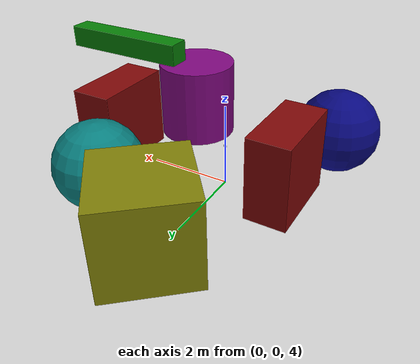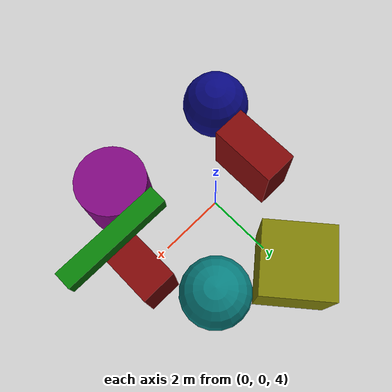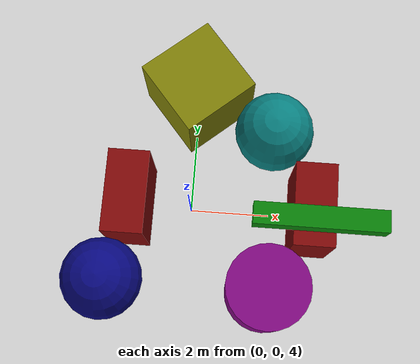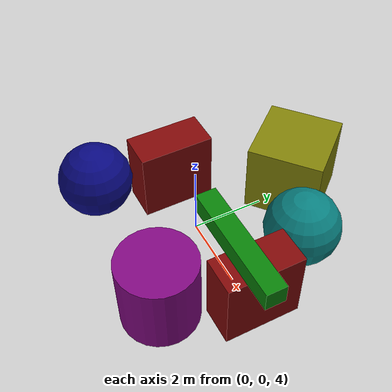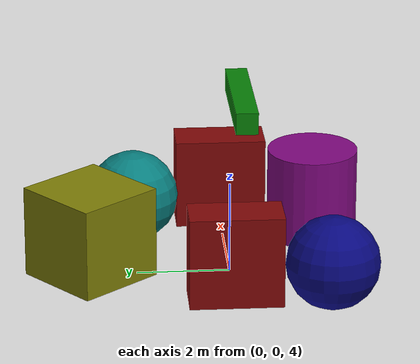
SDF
<sdf version="1.3">
    <world name="world_1">
        <scene>
            <ambient>0.5 0.5 0.5 1.0</ambient>
            <background>0.5 0.5 0.5 1.0</background>
        </scene>
        <physics type="ode">
            <gravity>0.0 0.0 0.0</gravity>
            <ode>
                <solver>
                    <type>quick</type>
                    <dt>0.001</dt>
                    <iters>20</iters>
                    <sor>1.3</sor>
                </solver>
                <constraints>
                    <cfm>0</cfm>
                    <erp>0.2</erp>
                    <contact_max_correcting_vel>100.0</contact_max_correcting_vel>
                    <contact_surface_layer>0.0</contact_surface_layer>
                </constraints>
            </ode>
            <max_contacts>250</max_contacts>
        </physics>
        <model name="model_1">
            <pose>0.0 0.0 5.0 0.0 0.0 0.0</pose>
            <link name="link_1">
                <pose>0.0 0.0 0.0 0.0 0.0 0.707</pose>
                <inertial>
                    <pose>0.0 0.0 0.0 0.0 0.0 0.0</pose>
                    <inertia>
                        <ixx>1.0</ixx>
                        <ixy>0.0</ixy>
                        <ixz>0.0</ixz>
                        <iyy>1.0</iyy>
                        <iyz>0.0</iyz>
                        <izz>1.0</izz>
                    </inertia>
                    <mass>10.0</mass>
                </inertial>
                <visual name="visual_box">
                    <pose>0.0 0.0 0.0 0.0 0.0 0.0</pose>
                    <geometry>
                        <box>
                            <size>0.05 0.05 0.05</size>
                        </box>
                    </geometry>
                    <cast_shadows>true</cast_shadows>
                    <laser_retro>100.0</laser_retro>
                </visual>
                <collision name="collision_box">
                    <pose>0.0 0.0 0.0 0.0 0.0 0.0</pose>
                    <max_contacts>250</max_contacts>
                    <geometry>
                        <box>
                            <size>0.05 0.05 0.05</size>
                        </box>
                    </geometry>
                    <surface>
                        <friction>
                            <ode>
                                <mu>0.5</mu>
                                <mu2>0.2</mu2>
                                <fdir1>1.0 0 0</fdir1>
                                <slip1>0</slip1>
                                <slip2>0</slip2>
                            </ode>
                        </friction>
                        <bounce>
                            <restitution_coefficient>0</restitution_coefficient>
                            <threshold>1000000.0</threshold>
                        </bounce>
                        <contact>
                            <ode>
                                <soft_cfm>0</soft_cfm>
                                <soft_erp>0.2</soft_erp>
                                <kp>1e15</kp>
                                <kd>1e13</kd>
                                <max_vel>100.0</max_vel>
                                <min_depth>0.0001</min_depth>
                            </ode>
                        </contact>
                    </surface>
                    <laser_retro>100.0</laser_retro>
                </collision>
                <sensor name="laser_sensor" type="gpu_ray">
                    <pose>0.0 0.0 0.0 0.0 0.0 0.0</pose>
                    <ray>
                        <scan display="true">
                            <horizontal>
                                <samples>640</samples>
                                <resolution>1</resolution>
                                <min_angle>-1.396263</min_angle>
                                <max_angle>1.396263</max_angle>
                            </horizontal>
                            <vertical>
                                <samples>1</samples>
                                <resolution>0.5</resolution>
                                <min_angle>-0.7854</min_angle>
                                <max_angle>0.7854</max_angle>
                            </vertical>
                        </scan>
                        <range>
                            <min>0.080000000000000002</min>
                            <max>10.0</max>
                            <resolution>0.01</resolution>
                        </range>
                    </ray>
                    <plugin name="gpu_laser" filename="libgazebo_ros_gpu_laser.so">
                        <alwaysOn>1</alwaysOn>
                        <updateRate>20.0</updateRate>
                        <gaussianNoise>0.0</gaussianNoise>
                        <imageTopicName>image</imageTopicName>
                        <topicName>laser_scan</topicName>
                        <frameName>/laser_sensor</frameName>
                        <pointCloudCutoff>0.001</pointCloudCutoff>
                    </plugin>
                    <always_on>true</always_on>
                    <update_rate>20.0</update_rate>
                </sensor>
                <gravity>false</gravity>
                <self_collide>true</self_collide>
                <kinematic>false</kinematic>
            </link>
            <static>true</static>
        </model>
        <model name="model_2">
            <pose>0.0 0.0 0.0 0.0 0.0 0.0</pose>
            <link name="link_1">
                <pose>3.0 0.0 5.0 0.0 0.0 0.0</pose>
                <inertial>
                    <pose>0.0 0.0 0.0 0.0 0.0 0.0</pose>
                    <inertia>
                        <ixx>1.0</ixx>
                        <ixy>0.0</ixy>
                        <ixz>0.0</ixz>
                        <iyy>1.0</iyy>
                        <iyz>0.0</iyz>
                        <izz>1.0</izz>
                    </inertia>
                    <mass>10.0</mass>
                </inertial>
                <visual name="visual_box">
                    <pose>0.0 0.0 0.0 0.0 0.0 0.0</pose>
                    <geometry>
                        <box>
                            <size>1 2 2</size>
                        </box>
                    </geometry>
                    <material>
                        <ambient>0.5 0.03 0.03 1.0</ambient>
                        <script>Gazebo/Red</script>
                    </material>
                    <cast_shadows>true</cast_shadows>
                    <laser_retro>100.0</laser_retro>
                </visual>
                <collision name="collision_box">
                    <pose>0.0 0.0 0.0 0.0 0.0 0.0</pose>
                    <max_contacts>250</max_contacts>
                    <geometry>
                        <box>
                            <size>1 2 2</size>
                        </box>
                    </geometry>
                    <surface>
                        <friction>
                            <ode>
                                <mu>0.5</mu>
                                <mu2>0.2</mu2>
                                <fdir1>1.0 0 0</fdir1>
                                <slip1>0</slip1>
                                <slip2>0</slip2>
                            </ode>
                        </friction>
                        <bounce>
                            <restitution_coefficient>0</restitution_coefficient>
                            <threshold>1000000.0</threshold>
                        </bounce>
                        <contact>
                            <ode>
                                <soft_cfm>0</soft_cfm>
                                <soft_erp>0.2</soft_erp>
                                <kp>1e15</kp>
                                <kd>1e13</kd>
                                <max_vel>100.0</max_vel>
                                <min_depth>0.0001</min_depth>
                            </ode>
                        </contact>
                    </surface>
                    <laser_retro>100.0</laser_retro>
                </collision>
                <gravity>false</gravity>
                <self_collide>true</self_collide>
                <kinematic>false</kinematic>
            </link>
            <link name="link_2">
                <pose>3.0 -0.5 6.8 0.0 0.0 0.0</pose>
                <inertial>
                    <pose>0.0 0.0 0.0 0.0 0.0 0.0</pose>
                    <inertia>
                        <ixx>1.0</ixx>
                        <ixy>0.0</ixy>
                        <ixz>0.0</ixz>
                        <iyy>1.0</iyy>
                        <iyz>0.0</iyz>
                        <izz>1.0</izz>
                    </inertia>
                    <mass>10.0</mass>
                </inertial>
                <visual name="visual_box">
                    <pose>0.0 0.0 0.0 0.0 0.0 0.0</pose>
                    <geometry>
                        <box>
                            <size>3 0.5 0.5</size>
                        </box>
                    </geometry>
                    <material>
                        <ambient>0.03 0.5 0.03 1.0</ambient>
                        <script>Gazebo/Green</script>
                    </material>
                    <cast_shadows>true</cast_shadows>
                    <laser_retro>50.0</laser_retro>
                </visual>
                <collision name="collision_box">
                    <pose>0.0 0.0 0.0 0.0 0.0 0.0</pose>
                    <max_contacts>250</max_contacts>
                    <geometry>
                        <box>
                            <size>3 0.5 0.5</size>
                        </box>
                    </geometry>
                    <surface>
                        <friction>
                            <ode>
                                <mu>0.5</mu>
                                <mu2>0.2</mu2>
                                <fdir1>1.0 0 0</fdir1>
                                <slip1>0</slip1>
                                <slip2>0</slip2>
                            </ode>
                        </friction>
                        <bounce>
                            <restitution_coefficient>0</restitution_coefficient>
                            <threshold>1000000.0</threshold>
                        </bounce>
                        <contact>
                            <ode>
                                <soft_cfm>0</soft_cfm>
                                <soft_erp>0.2</soft_erp>
                                <kp>1e15</kp>
                                <kd>1e13</kd>
                                <max_vel>100.0</max_vel>
                                <min_depth>0.0001</min_depth>
                            </ode>
                        </contact>
                    </surface>
                    <laser_retro>50.0</laser_retro>
                </collision>
                <gravity>false</gravity>
                <self_collide>true</self_collide>
                <kinematic>false</kinematic>
            </link>
            <link name="link_3">
                <pose>0.0 3.0 5.0 0.0 0.0 0.7</pose>
                <inertial>
                    <pose>0.0 0.0 0.0 0.0 0.0 0.0</pose>
                    <inertia>
                        <ixx>1.0</ixx>
                        <ixy>0.0</ixy>
                        <ixz>0.0</ixz>
                        <iyy>1.0</iyy>
                        <iyz>0.0</iyz>
                        <izz>1.0</izz>
                    </inertia>
                    <mass>10.0</mass>
                </inertial>
                <visual name="visual_box">
                    <pose>0.0 0.0 0.0 0.0 0.0 0.0</pose>
                    <geometry>
                        <box>
                            <size>2 2 2</size>
                        </box>
                    </geometry>
                    <material>
                        <ambient>0.5 0.5 0.03 1.0</ambient>
                        <script>Gazebo/Yellow</script>
                    </material>
                    <cast_shadows>true</cast_shadows>
                    <laser_retro>1.0</laser_retro>
                </visual>
                <collision name="collision_box">
                    <pose>0.0 0.0 0.0 0.0 0.0 0.0</pose>
                    <max_contacts>250</max_contacts>
                    <geometry>
                        <box>
                            <size>2 2 2</size>
                        </box>
                    </geometry>
                    <surface>
                        <friction>
                            <ode>
                                <mu>0.5</mu>
                                <mu2>0.2</mu2>
                                <fdir1>1.0 0 0</fdir1>
                                <slip1>0</slip1>
                                <slip2>0</slip2>
                            </ode>
                        </friction>
                        <bounce>
                            <restitution_coefficient>0</restitution_coefficient>
                            <threshold>1000000.0</threshold>
                        </bounce>
                        <contact>
                            <ode>
                                <soft_cfm>0</soft_cfm>
                                <soft_erp>0.2</soft_erp>
                                <kp>1e15</kp>
                                <kd>1e13</kd>
                                <max_vel>100.0</max_vel>
                                <min_depth>0.0001</min_depth>
                            </ode>
                        </contact>
                    </surface>
                    <laser_retro>100.0</laser_retro>
                </collision>
                <gravity>false</gravity>
                <self_collide>true</self_collide>
                <kinematic>false</kinematic>
            </link>
            <link name="link_4">
                <pose>2.0 -2.0 5.0 0.0 0.0 0.0</pose>
                <inertial>
                    <pose>0.0 0.0 0.0 0.0 0.0 0.0</pose>
                    <inertia>
                        <ixx>1.0</ixx>
                        <ixy>0.0</ixy>
                        <ixz>0.0</ixz>
                        <iyy>1.0</iyy>
                        <iyz>0.0</iyz>
                        <izz>1.0</izz>
                    </inertia>
                    <mass>10.0</mass>
                </inertial>
                <visual name="visual_box">
                    <pose>0.0 0.0 0.0 0.0 0.0 0.0</pose>
                    <geometry>
                        <cylinder>
                            <radius>1</radius>
                            <length>2</length>
                        </cylinder>
                    </geometry>
                    <material>
                        <ambient>0.5 0.03 0.5 1.0</ambient>
                        <script>Gazebo/Purple</script>
                    </material>
                    <cast_shadows>true</cast_shadows>
                    <laser_retro>70.0</laser_retro>
                </visual>
                <collision name="collision_box">
                    <pose>0.0 0.0 0.0 0.0 0.0 0.0</pose>
                    <max_contacts>250</max_contacts>
                    <geometry>
                        <cylinder>
                            <radius>1</radius>
                            <length>2</length>
                        </cylinder>
                    </geometry>
                    <surface>
                        <friction>
                            <ode>
                                <mu>0.5</mu>
                                <mu2>0.2</mu2>
                                <fdir1>1.0 0 0</fdir1>
                                <slip1>0</slip1>
                                <slip2>0</slip2>
                            </ode>
                        </friction>
                        <bounce>
                            <restitution_coefficient>0</restitution_coefficient>
                            <threshold>1000000.0</threshold>
                        </bounce>
                        <contact>
                            <ode>
                                <soft_cfm>0</soft_cfm>
                                <soft_erp>0.2</soft_erp>
                                <kp>1e15</kp>
                                <kd>1e13</kd>
                                <max_vel>100.0</max_vel>
                                <min_depth>0.0001</min_depth>
                            </ode>
                        </contact>
                    </surface>
                    <laser_retro>100.0</laser_retro>
                </collision>
                <gravity>false</gravity>
                <self_collide>true</self_collide>
                <kinematic>false</kinematic>
            </link>
            <link name="link_5">
                <pose>2.0 2.0 5.0 0.0 0.0 0.0</pose>
                <inertial>
                    <pose>0.0 0.0 0.0 0.0 0.0 0.0</pose>
                    <inertia>
                        <ixx>1.0</ixx>
                        <ixy>0.0</ixy>
                        <ixz>0.0</ixz>
                        <iyy>1.0</iyy>
                        <iyz>0.0</iyz>
                        <izz>1.0</izz>
                    </inertia>
                    <mass>10.0</mass>
                </inertial>
                <visual name="visual_box">
                    <pose>0.0 0.0 0.0 0.0 0.0 0.0</pose>
                    <geometry>
                        <sphere>
                            <radius>1</radius>
                        </sphere>
                    </geometry>
                    <material>
                        <ambient>0.03 0.5 0.5 1.0</ambient>
                        <script>Gazebo/Turquoise</script>
                    </material>
                    <cast_shadows>true</cast_shadows>
                    <laser_retro>35.0</laser_retro>
                </visual>
                <collision name="collision_box">
                    <pose>0.0 0.0 0.0 0.0 0.0 0.0</pose>
                    <max_contacts>250</max_contacts>
                    <geometry>
                        <sphere>
                            <radius>1</radius>
                        </sphere>
                    </geometry>
                    <surface>
                        <friction>
                            <ode>
                                <mu>0.5</mu>
                                <mu2>0.2</mu2>
                                <fdir1>1.0 0 0</fdir1>
                                <slip1>0</slip1>
                                <slip2>0</slip2>
                            </ode>
                        </friction>
                        <bounce>
                            <restitution_coefficient>0</restitution_coefficient>
                            <threshold>1000000.0</threshold>
                        </bounce>
                        <contact>
                            <ode>
                                <soft_cfm>0</soft_cfm>
                                <soft_erp>0.2</soft_erp>
                                <kp>1e15</kp>
                                <kd>1e13</kd>
                                <max_vel>100.0</max_vel>
                                <min_depth>0.0001</min_depth>
                            </ode>
                        </contact>
                    </surface>
                    <laser_retro>100.0</laser_retro>
                </collision>
                <gravity>false</gravity>
                <self_collide>true</self_collide>
                <kinematic>false</kinematic>
            </link>
            <link name="link_6">
                <pose>-2.0 -2.0 5.0 0.0 0.0 0.0</pose>
                <inertial>
                    <pose>0.0 0.0 0.0 0.0 0.0 0.0</pose>
                    <inertia>
                        <ixx>1.0</ixx>
                        <ixy>0.0</ixy>
                        <ixz>0.0</ixz>
                        <iyy>1.0</iyy>
                        <iyz>0.0</iyz>
                        <izz>1.0</izz>
                    </inertia>
                    <mass>10.0</mass>
                </inertial>
                <visual name="visual_box">
                    <pose>0.0 0.0 0.0 0.0 0.0 0.0</pose>
                    <geometry>
                        <sphere>
                            <radius>1</radius>
                        </sphere>
                    </geometry>
                    <material>
                        <ambient>0.03 0.03 0.5 1.0</ambient>
                        <script>Gazebo/Blue</script>
                    </material>
                    <cast_shadows>true</cast_shadows>
                    <laser_retro>35.0</laser_retro>
                </visual>
                <collision name="collision_box">
                    <pose>0.0 0.0 0.0 0.0 0.0 0.0</pose>
                    <max_contacts>250</max_contacts>
                    <geometry>
                        <sphere>
                            <radius>1</radius>
                        </sphere>
                    </geometry>
                    <surface>
                        <friction>
                            <ode>
                                <mu>0.5</mu>
                                <mu2>0.2</mu2>
                                <fdir1>1.0 0 0</fdir1>
                                <slip1>0</slip1>
                                <slip2>0</slip2>
                            </ode>
                        </friction>
                        <bounce>
                            <restitution_coefficient>0</restitution_coefficient>
                            <threshold>1000000.0</threshold>
                        </bounce>
                        <contact>
                            <ode>
                                <soft_cfm>0</soft_cfm>
                                <soft_erp>0.2</soft_erp>
                                <kp>1e15</kp>
                                <kd>1e13</kd>
                                <max_vel>100.0</max_vel>
                                <min_depth>0.0001</min_depth>
                            </ode>
                        </contact>
                    </surface>
                    <laser_retro>100.0</laser_retro>
                </collision>
                <gravity>false</gravity>
                <self_collide>true</self_collide>
                <kinematic>false</kinematic>
            </link>
            <link name="link_7">
                <pose>-1.5 0.0 5.0 0.0 0.0 0.0</pose>
                <inertial>
                    <pose>0.0 0.0 0.0 0.0 0.0 0.0</pose>
                    <inertia>
                        <ixx>1.0</ixx>
                        <ixy>0.0</ixy>
                        <ixz>0.0</ixz>
                        <iyy>1.0</iyy>
                        <iyz>0.0</iyz>
                        <izz>1.0</izz>
                    </inertia>
                    <mass>10.0</mass>
                </inertial>
                <visual name="visual_box">
                    <pose>0.0 0.0 0.0 0.0 0.0 0.0</pose>
                    <geometry>
                        <box>
                            <size>1 2 2</size>
                        </box>
                    </geometry>
                    <material>
                        <ambient>0.5 0.03 0.03 1.0</ambient>
                        <script>Gazebo/Red</script>
                    </material>
                    <cast_shadows>true</cast_shadows>
                    <laser_retro>150.0</laser_retro>
                </visual>
                <collision name="collision_box">
                    <pose>0.0 0.0 0.0 0.0 0.0 0.0</pose>
                    <max_contacts>250</max_contacts>
                    <geometry>
                        <box>
                            <size>1 2 2</size>
                        </box>
                    </geometry>
                    <surface>
                        <friction>
                            <ode>
                                <mu>0.5</mu>
                                <mu2>0.2</mu2>
                                <fdir1>1.0 0 0</fdir1>
                                <slip1>0</slip1>
                                <slip2>0</slip2>
                            </ode>
                        </friction>
                        <bounce>
                            <restitution_coefficient>0</restitution_coefficient>
                            <threshold>1000000.0</threshold>
                        </bounce>
                        <contact>
                            <ode>
                                <soft_cfm>0</soft_cfm>
                                <soft_erp>0.2</soft_erp>
                                <kp>1e15</kp>
                                <kd>1e13</kd>
                                <max_vel>100.0</max_vel>
                                <min_depth>0.0001</min_depth>
                            </ode>
                        </contact>
                    </surface>
                    <laser_retro>100.0</laser_retro>
                </collision>
                <gravity>false</gravity>
                <self_collide>true</self_collide>
                <kinematic>false</kinematic>
            </link>
            <static>false</static>
        </model>
        <light type="point" name="light_1">
            <pose>0.0 0.0 10.0 0.0 0.0 0.0</pose>
            <diffuse>0.5 0.5 0.5 0.5</diffuse>
            <attenuation>
                <range>1000.0</range>
                <constant>0.01</constant>
                <quadratic>0.0001</quadratic>
            </attenuation>
            <direction>0 0 -1</direction>
            <spot>
                <inner_angle>1.57</inner_angle>
                <outer_angle>1.57</outer_angle>
                <falloff>1.0</falloff>
            </spot>
            <cast_shadows>true</cast_shadows>
        </light>
        <plugin name="gazebo_ros_api" filename="libgazebo_ros_api_plugin.so">
            <alwaysOn>1</alwaysOn>
            <updateRate>1000.0</updateRate>
        </plugin>
    </world>
</sdf>
